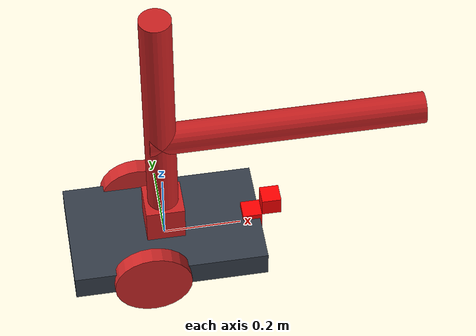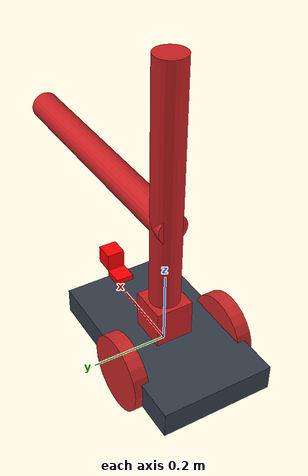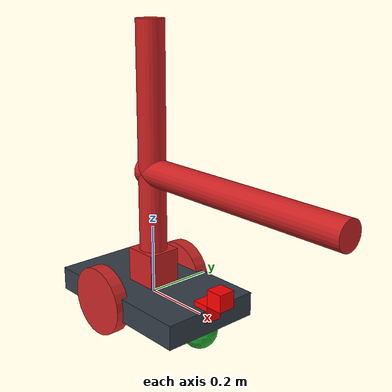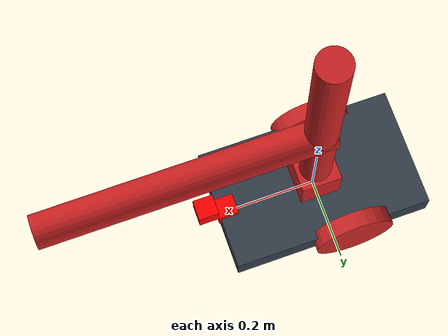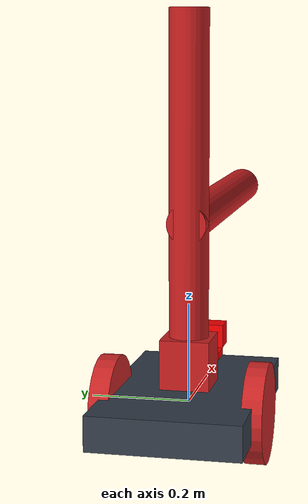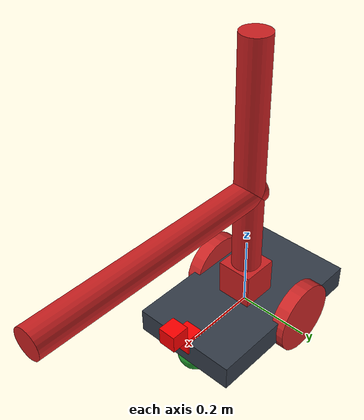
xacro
<?xml version="1.0" ?>
<robot name="robot_xacro" xmlns:xacro="https://www.ros.org/wiki/xacro" >

 <xacro:include filename="$(find exprob_3)/urdf/robot.gazebo" />

  <material name="black">
    <color rgba="0.0 0.0 0.0 1.0"/>
  </material>
  <material name="blue">
    <color rgba="0.203125 0.23828125 0.28515625 1.0"/>
  </material>
  <material name="green">
    <color rgba="0.0 0.8 0.0 1.0"/>
  </material>
  <material name="grey">
    <color rgba="0.2 0.2 0.2 1.0"/>
  </material>
  <material name="orange">
    <color rgba="1.0 0.423529411765 0.0392156862745 1.0"/>
  </material>
  <material name="brown">
    <color rgba="0.870588235294 0.811764705882 0.764705882353 1.0"/>
  </material>
  <material name="red">
    <color rgba="0.80078125 0.12890625 0.1328125 1.0"/>
  </material>
  <material name="white">
    <color rgba="1.0 1.0 1.0 1.0"/>
  </material>

 <xacro:macro name="cylinder_inertia" params="mass r l">
    <inertia ixx="${mass*(3*r*r+l*l)/12}" ixy = "0" ixz = "0"
                iyy="${mass*(3*r*r+l*l)/12}" iyz = "0" izz="${mass*(r*r)/2}" />
 </xacro:macro>

    <xacro:macro name="link_wheel" params="name">
        <link name="${name}">
            <inertial>
              <mass value="0.2"/>
              <origin rpy="0 1.5707 1.5707" xyz="0 0 0"/>
              <inertia ixx="0.000526666666667" ixy="0" ixz="0" iyy="0.000526666666667" iyz="0" izz="0.001"/>
            </inertial>
            <collision name="link_right_wheel_collision">
              <origin rpy="0 1.5707 1.5707" xyz="0 0 0"/>
              <geometry>
                <cylinder length="0.04" radius="0.1"/>
              </geometry>
            </collision>
            <visual name="${name}_visual">
              <origin rpy="0 1.5707 1.5707" xyz="0 0 0"/>
              <geometry>
                <cylinder length="0.04" radius="0.1"/>
              </geometry>
            </visual>
        </link>
    </xacro:macro>

     <xacro:macro name="joint_wheel" params="name child origin_xyz">
      <joint name="${name}" type="continuous">
        <origin rpy="0 0 0" xyz="${origin_xyz}"/>
        <child link="${child}"/>
        <parent link="link_chassis"/>
        <axis rpy="0 0 0" xyz="0 1 0"/>
        <limit effort="10000" velocity="1000"/>
        <joint_properties damping="1.0" friction="1.0"/>
      </joint>
    </xacro:macro>

  <link name="link_chassis">
    <!-- pose and inertial -->
    <pose>0 0 0.1 0 0 0</pose>

    <inertial>
      <mass value="5"/>
      <origin rpy="0 0 0" xyz="0 0 0.1"/>
      <inertia ixx="0.0395416666667" ixy="0" ixz="0" iyy="0.106208333333" iyz="0" izz="0.106208333333"/>
    </inertial>

    <collision name="collision_chassis">
      <geometry>
        <box size="0.5 0.3 0.07"/>
      </geometry>
    </collision>

    <visual>
      <origin rpy="0 0 0" xyz="0 0 0"/>
      <geometry>
        <box size="0.5 0.3 0.07"/>
      </geometry>
      <material name="blue"/>
    </visual>

    <!-- caster front -->
    <collision name="caster_front_collision">
      <origin rpy=" 0 0 0" xyz="0.35 0 -0.05"/>
      <geometry>
        <sphere radius="0.05"/>
      </geometry>
      <surface>
        <friction>
          <ode>
            <mu>0</mu>
            <mu2>0</mu2>
            <slip1>1.0</slip1>
            <slip2>1.0</slip2>
          </ode>
        </friction>
      </surface>
    </collision>
    <visual name="caster_front_visual">
      <origin rpy=" 0 0 0" xyz="0.2 0 -0.05"/>
      <geometry>
        <sphere radius="0.05"/>
      </geometry>
    </visual>
    </link>

  <!-- Create wheels -->

  <xacro:link_wheel name="link_right_wheel" />
  <xacro:link_wheel name="link_left_wheel" />
  <xacro:joint_wheel name="joint_right_wheel"  child="link_right_wheel"  origin_xyz="-0.05 0.15 0"  />
  <xacro:joint_wheel name="joint_left_wheel"   child="link_left_wheel"   origin_xyz="-0.05 -0.15 0"  />

   <link name="hokuyo_link">
	    <collision>
	      <origin xyz="0 0 0.025" rpy="0 0 0"/>
	      <geometry>
		<box size="0.05 0.05 0.05"/>
	      </geometry>
	    </collision>
	    <visual>
	      <origin xyz="0 0 0.025" rpy="0 0 0"/>
	      <geometry>
		<box size="0.05 0.05 0.05"/>
	      </geometry>
	      <material name="red">
		<color rgba="1 0 0 1"/>
	      </material>
	    </visual>
	    <inertial>
	      <mass value="1e-5" />
	      <origin xyz="0 0 0" rpy="0 0 0"/>
	      <inertia ixx="1e-6" ixy="0" ixz="0" iyy="1e-6" iyz="0" izz="1e-6" />
	    </inertial>
  </link>

  <joint name="hokuyo_joint" type="fixed">
	    <axis xyz="0 1 0" />
	    <origin xyz="0.28 0 0.05" rpy="0 0 0"/>
	    <parent link="link_chassis"/>
	    <child link="hokuyo_link"/>
 </joint>

<!--arm definition -->

  <link name="arm_base_link">
  	<inertial>
  		<mass value="0.1"/>
  		<origin xyz="0 0 0" rpy="0 0 0" />
  		<inertia ixx="0.0000416666667" ixy="0" ixz="0" iyy="0.0000416666667" iyz="0" izz="0.0000416666667"/>
  	</inertial>
  	<collision>
  	  <origin xyz="0 0 0" rpy="0 0 0"/>
      <geometry>
        <box size="0.1 0.1 0.1"/>
      </geometry>
  	</collision>
  	<visual>
  	  <origin xyz="0 0 0" rpy="0 0 0"/>
      <geometry>
        <box size="0.1 0.1 0.1"/>
      </geometry>
      <material name="red" />
  	</visual>
  </link>

  <joint name="arm_base_to_base" type="fixed">
  	<origin rpy="0 0 0" xyz="0 0 0.085"/>
  	<parent link="link_chassis"/>
  	<child link="arm_base_link"/>
  </joint>

  <link name="arm_link_01">
  	<inertial>
  		<mass value="0.025"/>
  		<origin xyz="0 0 0" rpy="0 0 0" />
  		<inertia ixx="0.000010279" ixy="0" ixz="0" iyy="0.000010279" iyz="0" izz="0.000007225"/>
  	</inertial>
  	<collision>
  	  <origin xyz="0 0 0.3" rpy="0 0 0"/>
      <geometry>
        <cylinder radius="0.04" length="0.8"/>
      </geometry>
  	</collision>
  	<visual>
  	  <origin xyz="0 0 0.3" rpy="0 0 0"/>
      <geometry>
        <cylinder radius="0.04" length="0.8"/>
      </geometry>
      <material name="red" />
  	</visual>
  </link>

  <joint name="arm_joint_01" type="revolute">
  	<axis xyz="0 0 1"/>
  	<limit effort="1000.0" lower="-3.14" upper="3.14" velocity="0.2"/>
  	<origin rpy="0 0 0" xyz="0 0 0"/>
  	<parent link="arm_base_link"/>
  	<child link="arm_link_01"/>
  </joint>

    <link name="arm_link_02">
  	<inertial>
  		<mass value="0.025"/>
  		<origin xyz="0 0 0" rpy="0 0 0" />
  		<inertia ixx="0.000010279" ixy="0" ixz="0" iyy="0.000010279" iyz="0" izz="0.000007225"/>
  	</inertial>
  	<collision>
  	  <origin xyz="0.32 0 -0.22" rpy="0 1.5708 0"/>
      <geometry>
        <cylinder radius="0.04" length="0.7"/>
      </geometry>
  	</collision>
  	<visual>
  	  <origin xyz="0.32 0 -0.22" rpy="0 1.5708 0"/>
      <geometry>
        <cylinder radius="0.04" length="0.7"/>
      </geometry>
      <material name="red" />
  	</visual>
  </link>

  <joint name="arm_joint_02" type="revolute">
  	<axis xyz="1 0 0"/>
  	<limit effort="1000.0" lower="-1.8" upper="1.8" velocity="0.2"/>
  	<origin rpy="0 0 0" xyz="0 0 0.5"/>
  	<parent link="arm_link_01"/>
  	<child link="arm_link_02"/>
  </joint>

   <link name="camera_link">
	    <collision>
	      <origin xyz="0 0 0.025" rpy="0 0 0"/>
	      <geometry>
		<box size="0.05 0.05 0.05"/>
	      </geometry>
	    </collision>
	    <visual>
	      <origin xyz="0 0 0.025" rpy="0 0 0"/>
	      <geometry>
		<box size="0.05 0.05 0.05"/>
	      </geometry>
	      <material name="red">
		<color rgba="1 0 0 1"/>
	      </material>
	    </visual>
	    <inertial>
	      <mass value="1e-5" />
	      <origin xyz="0 0 0" rpy="0 0 0"/>
	      <inertia ixx="1e-6" ixy="0" ixz="0" iyy="1e-6" iyz="0" izz="1e-6" />
	    </inertial>
  </link>

  <joint name="camera_joint" type="fixed">
	    <axis xyz="0 1 0" />
	    <origin xyz="0.23 0 0.0" rpy="0 0 0"/>
	    <parent link="link_chassis"/>
	    <child link="camera_link"/>
	 </joint>

<gazebo reference="camera_link">
    <sensor type="camera" name="camera">
      <update_rate>30.0</update_rate>
      <camera name="head">
        <horizontal_fov>1.3962634</horizontal_fov>
        <image>
          <width>800</width>
          <height>800</height>
          <format>R8G8B8</format>
        </image>
        <clip>
          <near>0.02</near>
          <far>300</far>
        </clip>
		<noise>
          <type>gaussian</type>
          <mean>0.0</mean>
          <stddev>0.007</stddev>
        </noise>
      </camera>
      <plugin name="camera_controller" filename="libgazebo_ros_camera.so">
        <alwaysOn>true</alwaysOn>
        <updateRate>0.0</updateRate>
        <cameraName>camera1</cameraName>
        <imageTopicName>image_raw</imageTopicName>
        <cameraInfoTopicName>camera_info</cameraInfoTopicName>
        <frameName>camera_link</frameName>
        <hackBaseline>0.07</hackBaseline>
        <distortionK1>0.0</distortionK1>
        <distortionK2>0.0</distortionK2>
        <distortionK3>0.0</distortionK3>
        <distortionT1>0.0</distortionT1>
        <distortionT2>0.0</distortionT2>
      </plugin>
    </sensor>
  </gazebo>

</robot>
